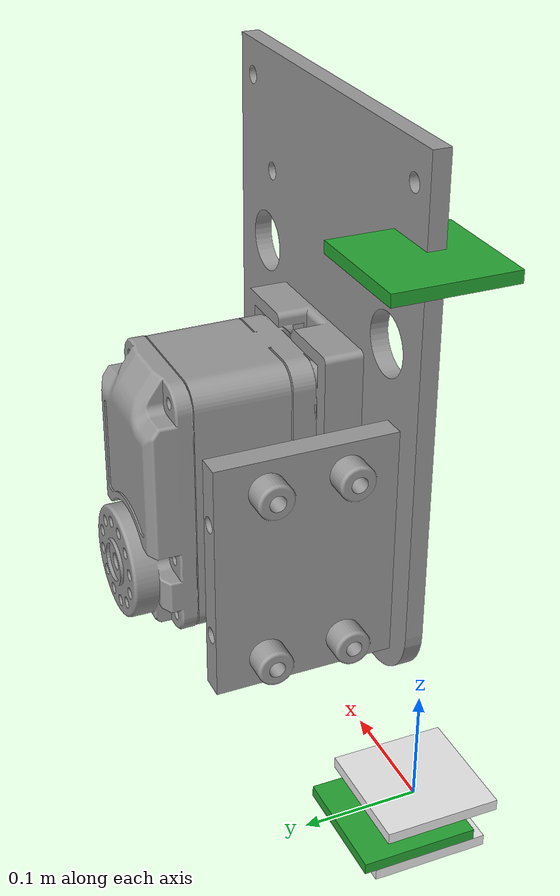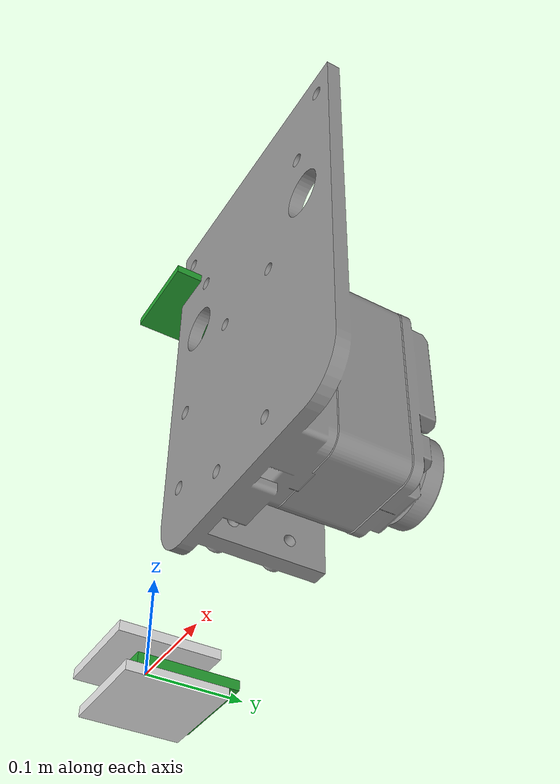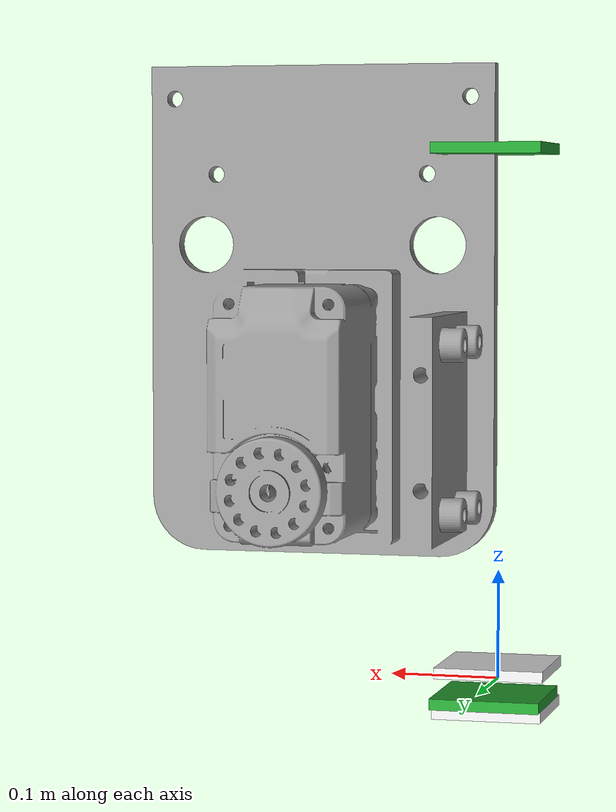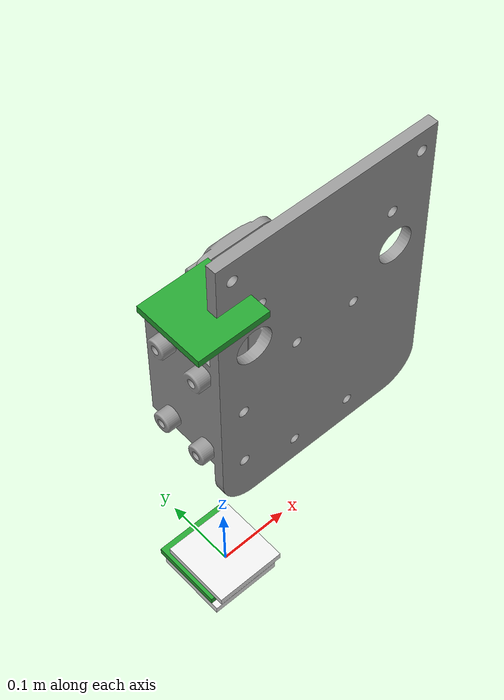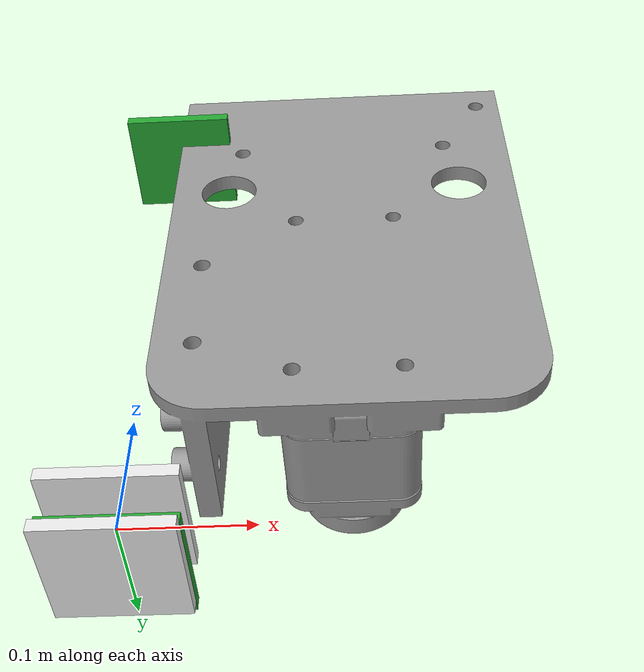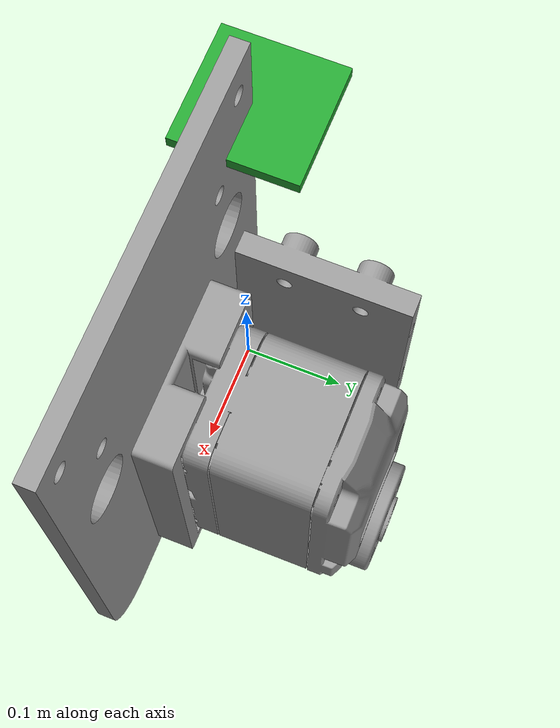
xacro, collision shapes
<?xml version="1.0"?>
<!-- Revolute-Revolute Manipulator -->

<robot xmlns:xacro="http://www.ros.org/wiki/xacro" name="Moniarm">
  <xacro:arg name="prefix" default="" />

  <!-- Import moniarm macro -->
  <xacro:include filename="$(find moniarm_description)/xacro/moniarm_description.urdf.xacro" />

  <!-- Import Rviz colors -->
  <xacro:include filename="$(find moniarm_description)/xacro/moniarm.materials.xacro" />

  <!-- Import moniarm ros2_control description -->
  <xacro:include filename="$(find moniarm_description)/xacro/moniarm.ros2_control.xacro" />

  <!-- Used for fixing robot -->
  <link name="world"/>
  <gazebo reference="world">
    <static>true</static>
  </gazebo>

  <!-- World fixed joint-->
  <joint name="world_fixed" type="fixed">
    <origin xyz="0 0 0" rpy="0 0 0"/>
    <parent link="world"/>
    <child link="base_link"/>
  </joint>

  <xacro:moniarm parent="world" prefix="$(arg prefix)">
    <origin xyz="0 0 0" rpy="0 0 0" />
  </xacro:moniarm>

  <xacro:moniarm_ros2_control
    name="moniarm" prefix="$(arg prefix)" />

</robot>

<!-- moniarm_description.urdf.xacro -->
<robot xmlns:xacro="http://www.ros.org/wiki/xacro">

  <xacro:macro name="moniarm" params="parent prefix *origin">

  <!-- Constants for robot dimensions -->
  <xacro:property name="mass" value="1" /> <!-- arbitrary value for mass -->
  <xacro:property name="width" value="0.1" /> <!-- Square dimensions (widthxwidth) of beams -->
  <xacro:property name="height1" value="0.01" /> <!-- Link 1 -->
  <xacro:property name="height2" value="0.01" /> <!-- Link 2 -->
  <xacro:property name="height3" value="0.01" /> <!-- Link 3 -->
  <xacro:property name="height3" value="0.01" /> <!-- Link 4 -->
  <xacro:property name="height3" value="0.01" /> <!-- Link 5 -->
  <xacro:property name="camera_link" value="0.05" /> <!-- Size of square 'camera' box -->
  <xacro:property name="axel_offset" value="0.05" /> <!-- Space btw top of beam and the each joint -->

  <!-- Base Link -->
  <link name="base_link">
      <collision>
          <origin xyz="0 0 0" rpy="0 0 0"/>
          <geometry>
              <mesh filename="package://moniarm_description/meshes/base.stl" scale="0.005 0.005 0.005"/>
          </geometry>
      </collision>
      <visual>
          <origin xyz="0 0 0" rpy="1.5708 0 0"/>
          <geometry>
              <mesh filename="package://moniarm_description/meshes/base.stl" scale="0.005 0.005 0.005"/>
          </geometry>
          <material name="grey"/>
      </visual>
      <inertial>
          <origin xyz="0 0 0" rpy="0 0 0"/>
          <mass value="1"/>
          <inertia ixx="1.0" ixy="0.0" ixz="0.0" iyy="1.0" iyz="0.0" izz="1.0"/>
      </inertial>
  </link>

  <!-- Joint 1, motor0 -->
  <joint name="${prefix}joint1" type="continuous">
    <parent link="${prefix}base_link"/>
    <child link="${prefix}link1"/>
    <origin xyz="0 0 ${height1}" rpy="0 0 0"/>
    <axis xyz="0 1 0"/>
    <dynamics damping="0.7"/>
  </joint>

  <!-- Link 1-->
  <link name="${prefix}link1">
    <collision>
				<origin rpy="0 0 0" xyz="0 0 0" />
				<geometry>
        <box size="${width} ${width} ${height1}"/>
      </geometry>
			</collision>

    <visual>
      <origin xyz="0.06 -0.12 0.17" rpy="0 0 -1.5708"/>
      <geometry>
					<mesh filename="package://moniarm_description/meshes/link1.stl" scale="0.005 0.005 0.005" />
      </geometry>
      <material name="white"/>
    </visual>

    <inertial>
      <origin xyz="0 0 ${height1/2}" rpy="0 0 0"/>
      <mass value="${mass}"/>
      <inertia
        ixx="${mass / 12.0 * (width*width + height1*height1)}" ixy="0.0" ixz="0.0"
        iyy="${mass / 12.0 * (height1*height1 + width*width)}" iyz="0.0"
        izz="${mass / 12.0 * (width*width + width*width)}"/>
      </inertial>
    </link>

    <!-- Joint 2, motor1 -->
    <joint name="${prefix}joint2" type="continuous">
      <parent link="${prefix}link1"/>
      <child link="${prefix}link2"/>
      <origin xyz="0 0.01 ${height2}" rpy="0 0 0"/>
      <axis xyz="0 1 0"/>
      <dynamics damping="0.7"/>
    </joint>

    <!-- Link 2-->
    <link name="${prefix}link2">
      <collision>
        <origin xyz="0 0 ${height2/2 - axel_offset}" rpy="0 0 0"/>
        <geometry>
          <box size="${width} ${width} ${height2}"/>
        </geometry>
      </collision>

      <visual>
        <origin xyz="-0.02 -0.1 -0.02" rpy="1.2 -0.1 0"/>
        <geometry>
					<mesh filename="package://moniarm_description/meshes/link2.stl" scale="0.005 0.005 0.005" />
        </geometry>
        <material name="white"/>
      </visual>

      <inertial>
        <origin xyz="0 0 ${height2/2 - axel_offset}" rpy="0 0 0"/>
        <mass value="${mass}"/>
        <inertia
          ixx="${mass / 12.0 * (width*width + height2*height2)}" ixy="0.0" ixz="0.0"
          iyy="${mass / 12.0 * (height2*height2 + width*width)}" iyz="0.0"
          izz="${mass / 12.0 * (width*width + width*width)}"/>
        </inertial>
      </link>

      <!-- Joint 3, motor2 -->
      <joint name="${prefix}joint3" type="continuous">
        <parent link="${prefix}link2"/>
        <child link="${prefix}link3"/>
        <origin xyz="0 0.01 ${height2}" rpy="0 0 0"/>
        <axis xyz="0 1 0"/>
        <dynamics damping="0.7"/>
      </joint>

      <!-- Link 3 -->
      <link name="${prefix}link3">
        <collision>
          <origin xyz="0 0 ${height3/2 - axel_offset}" rpy="0 0 0"/>
          <geometry>
            <box size="${width} ${width} ${height2}"/>
          </geometry>
        </collision>

        <visual>
          <origin xyz="-0.02 -0.1 0.0" rpy="1.2 0.3 0"/>
          <geometry>
            <mesh filename="package://moniarm_description/meshes/link3.stl" scale="0.005 0.005 0.005" />
          </geometry>
          <material name="green"/>
        </visual>

        <inertial>
          <origin xyz="0 0 ${height3/2 - axel_offset}" rpy="0 0 0"/>
          <mass value="${mass}"/>
          <inertia
            ixx="${mass / 12.0 * (width*width + height3*height3)}" ixy="0.0" ixz="0.0"
            iyy="${mass / 12.0 * (height3*height3 + width*width)}" iyz="0.0"
            izz="${mass / 12.0 * (width*width + width*width)}"/>
          </inertial>
        </link>

        <!-- Joint 4, motor3 -->
        <joint name="${prefix}joint4" type="continuous">
          <origin xyz="0 0 0.5" rpy="0 0 0" />
          <parent link="${prefix}link3"/>
          <child link="${prefix}link4" />
        </joint>

          <!-- Link 4, motor+link+pump -->
        <link name="${prefix}link4">
        <collision>
          <origin xyz="0 0 ${height3/2 - axel_offset}" rpy="0 0 0"/>
          <geometry>
            <box size="${width} ${width} ${height2}"/>
          </geometry>
        </collision>

        <visual>
          <origin xyz="0 0 0" rpy="0 0 0"/>
          <geometry>
            <mesh filename="package://moniarm_description/meshes/link4.stl" scale="0.005 0.005 0.005" />
          </geometry>
          <material name="green"/>
        </visual>

        <inertial>
          <origin xyz="0 0 ${height3/2 - axel_offset}" rpy="0 0 0"/>
          <mass value="${mass}"/>
          <inertia
            ixx="${mass / 12.0 * (width*width + height3*height3)}" ixy="0.0" ixz="0.0"
            iyy="${mass / 12.0 * (height3*height3 + width*width)}" iyz="0.0"
            izz="${mass / 12.0 * (width*width + width*width)}"/>
          </inertial>
        </link>

  </xacro:macro>

</robot>
